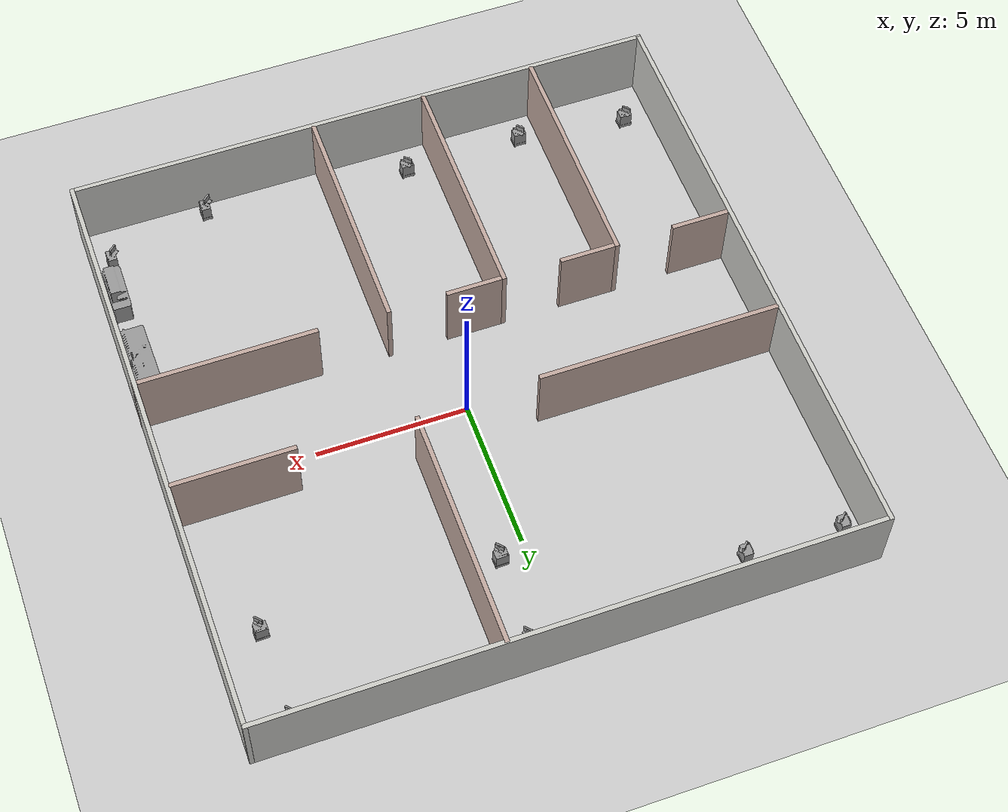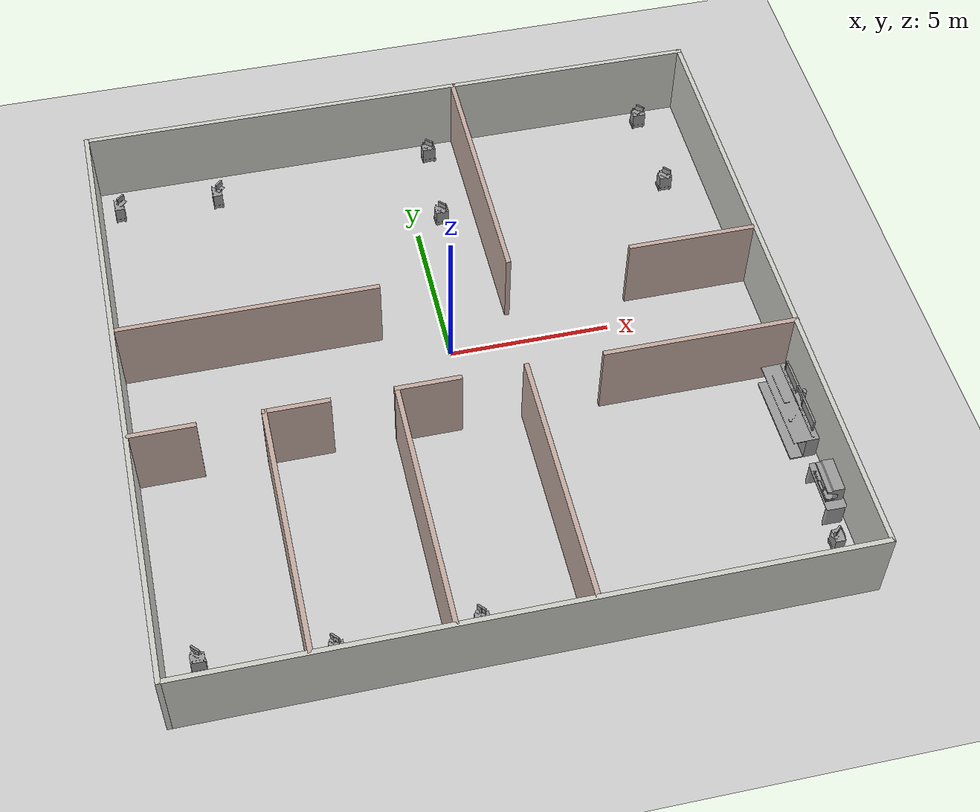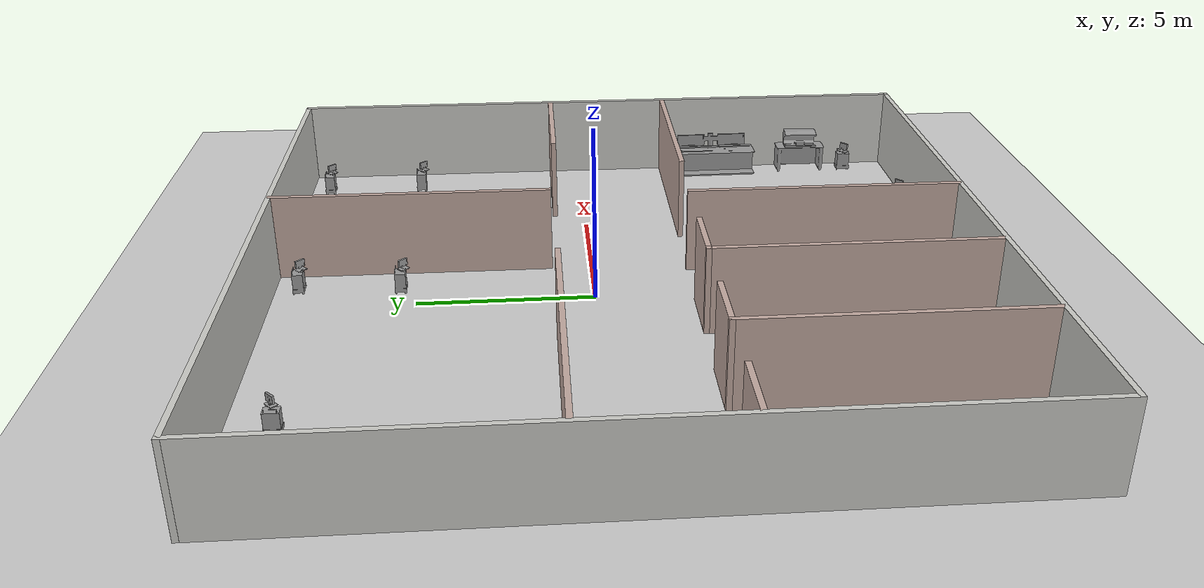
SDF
<sdf version="1.6">
 <world name="default">
  <light name="sun" type="directional">
   <pose>0 0 10 0 -0 0</pose>
   <diffuse>0.8 0.8 0.8 1</diffuse>
   <specular>0.2 0.2 0.2 1</specular>
   <attenuation>
    <range>1000</range>
    <constant>0.9</constant>
    <linear>0.01</linear>
    <quadratic>0.001</quadratic>
   </attenuation>
   <direction>-0.5 0.1 -0.9</direction>
  </light>
  <model name="ground_plane">
   <static>1</static>
   <link name="link">
    <collision name="collision">
     <geometry><plane><normal>0 0 1</normal><size>100 100</size></plane></geometry>
     <surface>
      <contact><collide_bitmask>65535</collide_bitmask></contact>
      <friction><ode><mu>100</mu><mu2>50</mu2></ode></friction>
     </surface>
    </collision>
    <visual name="visual">
     <cast_shadows>0</cast_shadows>
     <geometry><plane><normal>0 0 1</normal><size>100 100</size></plane></geometry>
     <material>
      <script><uri>file://media/materials/scripts/gazebo.material</uri><name>Gazebo/Grey</name></script>
     </material>
    </visual>
   </link>
  </model>
  <gravity>0 0 -9.8</gravity>
  <magnetic_field>6e-06 2.3e-05 -4.2e-05</magnetic_field>
  <atmosphere type="adiabatic"/>
  <physics name="default_physics" default="0" type="ode">
   <max_step_size>0.001</max_step_size>
   <real_time_factor>1</real_time_factor>
   <real_time_update_rate>1000</real_time_update_rate>
  </physics>
  <scene><ambient>0.4 0.4 0.4 1</ambient><background>0.7 0.7 0.7 1</background><shadows>1</shadows></scene>
  <spherical_coordinates>
   <surface_model>EARTH_WGS84</surface_model>
   <latitude_deg>0</latitude_deg>
   <longitude_deg>0</longitude_deg>
   <elevation>0</elevation>
   <heading_deg>0</heading_deg>
  </spherical_coordinates>
  <model name="hospital_building">
   <pose>-0.09369 -0.8053 0 0 -0 0</pose>
   <link name="Wall_2">
    <collision name="Wall_2_Collision">
     <geometry><box><size>20 0.15 2.5</size></box></geometry>
     <pose>0 0 1.25 0 -0 0</pose>
    </collision>
    <visual name="Wall_2_Visual">
     <pose>0 0 1.25 0 -0 0</pose>
     <geometry><box><size>20 0.15 2.5</size></box></geometry>
     <material>
      <script><uri>file://media/materials/scripts/gazebo.material</uri><name>Gazebo/CeilingTiled</name></script>
      <ambient>0.760784 0.662745 0.627451 1</ambient>
     </material>
     <meta><layer>0</layer></meta>
    </visual>
    <pose>-0.004813 -9.925 0 0 -0 3.14159</pose>
   </link>
   <link name="Wall_4">
    <collision name="Wall_4_Collision">
     <geometry><box><size>20 0.15 2.5</size></box></geometry>
     <pose>0 0 1.25 0 -0 0</pose>
    </collision>
    <visual name="Wall_4_Visual">
     <pose>0 0 1.25 0 -0 0</pose>
     <geometry><box><size>20 0.15 2.5</size></box></geometry>
     <material>
      <script><uri>file://media/materials/scripts/gazebo.material</uri><name>Gazebo/CeilingTiled</name></script>
      <ambient>0.760784 0.662745 0.627451 1</ambient>
     </material>
     <meta><layer>0</layer></meta>
    </visual>
    <pose>9.92019 0 0 0 -0 1.5708</pose>
   </link>
   <link name="Wall_40">
    <collision name="Wall_40_Collision">
     <geometry><box><size>8 0.15 2.5</size></box></geometry>
     <pose>0 0 1.25 0 -0 0</pose>
    </collision>
    <visual name="Wall_40_Visual">
     <pose>0 0 1.25 0 -0 0</pose>
     <geometry><box><size>8 0.15 2.5</size></box></geometry>
     <material>
      <script><uri>file://media/materials/scripts/gazebo.material</uri><name>Gazebo/Grey</name></script>
      <ambient>0.760784 0.662745 0.627451 1</ambient>
     </material>
     <meta><layer>0</layer></meta>
    </visual>
    <pose>-5.98337 -5.94165 0 0 0 -1.5708</pose>
   </link>
   <link name="Wall_44">
    <collision name="Wall_44_Collision">
     <geometry><box><size>8 0.15 2.5</size></box></geometry>
     <pose>0 0 1.25 0 -0 0</pose>
    </collision>
    <visual name="Wall_44_Visual">
     <pose>0 0 1.25 0 -0 0</pose>
     <geometry><box><size>8 0.15 2.5</size></box></geometry>
     <material>
      <script><uri>file://media/materials/scripts/gazebo.material</uri><name>Gazebo/Grey</name></script>
      <ambient>0.760784 0.662745 0.627451 1</ambient>
     </material>
     <meta><layer>0</layer></meta>
    </visual>
    <pose>-2.13337 -5.94165 0 0 0 -1.5708</pose>
   </link>
   <link name="Wall_47">
    <collision name="Wall_47_Collision">
     <geometry><box><size>8 0.15 2.5</size></box></geometry>
     <pose>0 0 1.25 0 -0 0</pose>
    </collision>
    <visual name="Wall_47_Visual">
     <pose>0 0 1.25 0 -0 0</pose>
     <geometry><box><size>8 0.15 2.5</size></box></geometry>
     <material>
      <script><uri>file://media/materials/scripts/gazebo.material</uri><name>Gazebo/Grey</name></script>
      <ambient>0.760784 0.662745 0.627451 1</ambient>
     </material>
     <meta><layer>0</layer></meta>
    </visual>
    <pose>1.71663 -5.94165 0 0 0 -1.5708</pose>
   </link>
   <link name="Wall_49">
    <collision name="Wall_49_Collision">
     <geometry><box><size>6 0.15 2.5</size></box></geometry>
     <pose>0 0 1.25 0 -0 0</pose>
    </collision>
    <visual name="Wall_49_Visual">
     <pose>0 0 1.25 0 -0 0</pose>
     <geometry><box><size>6 0.15 2.5</size></box></geometry>
     <material>
      <script><uri>file://media/materials/scripts/gazebo.material</uri><name>Gazebo/Grey</name></script>
      <ambient>0.760784 0.662745 0.627451 1</ambient>
     </material>
     <meta><layer>0</layer></meta>
    </visual>
    <pose>7.00481 -2.05374 0 0 -0 3.14159</pose>
   </link>
   <link name="Wall_51">
    <collision name="Wall_51_Collision">
     <geometry><box><size>2 0.15 2.5</size></box></geometry>
     <pose>0 0 1.25 0 -0 0</pose>
    </collision>
    <visual name="Wall_51_Visual">
     <pose>0 0 1.25 0 -0 0</pose>
     <geometry><box><size>2 0.15 2.5</size></box></geometry>
     <material>
      <script><uri>file://media/materials/scripts/gazebo.material</uri><name>Gazebo/Grey</name></script>
      <ambient>0.760784 0.662745 0.627451 1</ambient>
     </material>
     <meta><layer>0</layer></meta>
    </visual>
    <pose>-8.92186 -2.05374 0 0 -0 0</pose>
   </link>
   <link name="Wall_53">
    <collision name="Wall_53_Collision">
     <geometry><box><size>2 0.15 2.5</size></box></geometry>
     <pose>0 0 1.25 0 -0 0</pose>
    </collision>
    <visual name="Wall_53_Visual">
     <pose>0 0 1.25 0 -0 0</pose>
     <geometry><box><size>2 0.15 2.5</size></box></geometry>
     <material>
      <script><uri>file://media/materials/scripts/gazebo.material</uri><name>Gazebo/Grey</name></script>
      <ambient>0.760784 0.662745 0.627451 1</ambient>
     </material>
     <meta><layer>0</layer></meta>
    </visual>
    <pose>-5.05837 -2.01666 0 0 -0 0</pose>
   </link>
   <link name="Wall_55">
    <collision name="Wall_55_Collision">
     <geometry><box><size>2 0.15 2.5</size></box></geometry>
     <pose>0 0 1.25 0 -0 0</pose>
    </collision>
    <visual name="Wall_55_Visual">
     <pose>0 0 1.25 0 -0 0</pose>
     <geometry><box><size>2 0.15 2.5</size></box></geometry>
     <material>
      <script><uri>file://media/materials/scripts/gazebo.material</uri><name>Gazebo/Grey</name></script>
      <ambient>0.760784 0.662745 0.627451 1</ambient>
     </material>
     <meta><layer>0</layer></meta>
    </visual>
    <pose>-1.20837 -2.01666 0 0 -0 0</pose>
   </link>
   <link name="Wall_61">
    <collision name="Wall_61_Collision">
     <geometry><box><size>8 0.15 2.5</size></box></geometry>
     <pose>0 0 1.25 0 -0 0</pose>
    </collision>
    <visual name="Wall_61_Visual">
     <pose>0 0 1.25 0 -0 0</pose>
     <geometry><box><size>8 0.15 2.5</size></box></geometry>
     <material>
      <script><uri>file://media/materials/scripts/gazebo.material</uri><name>Gazebo/Grey</name></script>
      <ambient>0.760784 0.662745 0.627451 1</ambient>
     </material>
     <meta><layer>0</layer></meta>
    </visual>
    <pose>-5.87559 1.87846 0 0 -0 0</pose>
   </link>
   <link name="Wall_63">
    <collision name="Wall_63_Collision">
     <geometry><box><size>8 0.15 2.5</size></box></geometry>
     <pose>0 0 1.25 0 -0 0</pose>
    </collision>
    <visual name="Wall_63_Visual">
     <pose>0 0 1.25 0 -0 0</pose>
     <geometry><box><size>8 0.15 2.5</size></box></geometry>
     <material>
      <script><uri>file://media/materials/scripts/gazebo.material</uri><name>Gazebo/Grey</name></script>
      <ambient>0.760784 0.662745 0.627451 1</ambient>
     </material>
     <meta><layer>0</layer></meta>
    </visual>
    <pose>2.12734 5.96169 0 0 -0 1.5708</pose>
   </link>
   <link name="Wall_65">
    <collision name="Wall_65_Collision">
     <geometry><box><size>4 0.15 2.5</size></box></geometry>
     <pose>0 0 1.25 0 -0 0</pose>
    </collision>
    <visual name="Wall_65_Visual">
     <pose>0 0 1.25 0 -0 0</pose>
     <geometry><box><size>4 0.15 2.5</size></box></geometry>
     <material>
      <script><uri>file://media/materials/scripts/gazebo.material</uri><name>Gazebo/Grey</name></script>
      <ambient>0.760784 0.662745 0.627451 1</ambient>
     </material>
     <meta><layer>0</layer></meta>
    </visual>
    <pose>7.87701 1.77912 0 0 -0 0</pose>
   </link>
   <link name="Wall_7">
    <collision name="Wall_7_Collision">
     <geometry><box><size>20 0.15 2.5</size></box></geometry>
     <pose>0 0 1.25 0 -0 0</pose>
    </collision>
    <visual name="Wall_7_Visual">
     <pose>0 0 1.25 0 -0 0</pose>
     <geometry><box><size>20 0.15 2.5</size></box></geometry>
     <material>
      <script><uri>file://media/materials/scripts/gazebo.material</uri><name>Gazebo/CeilingTiled</name></script>
      <ambient>0.760784 0.662745 0.627451 1</ambient>
     </material>
     <meta><layer>0</layer></meta>
    </visual>
    <pose>-0.004813 9.925 0 0 -0 3.14159</pose>
   </link>
   <link name="Wall_9">
    <collision name="Wall_9_Collision">
     <geometry><box><size>20 0.15 2.5</size></box></geometry>
     <pose>0 0 1.25 0 -0 0</pose>
    </collision>
    <visual name="Wall_9_Visual">
     <pose>0 0 1.25 0 -0 0</pose>
     <geometry><box><size>20 0.15 2.5</size></box></geometry>
     <material>
      <script><uri>file://media/materials/scripts/gazebo.material</uri><name>Gazebo/CeilingTiled</name></script>
      <ambient>0.760784 0.662745 0.627451 1</ambient>
     </material>
     <meta><layer>0</layer></meta>
    </visual>
    <pose>-9.92981 0 0 0 0 -1.5708</pose>
   </link>
   <static>1</static>
  </model>
  <model name="lab_station2.0">
   <link name="link_3">
    <pose>0.493925 0.091041 0 0 -0 -3.13626</pose>
    <inertial>
     <mass>20</mass>
     <inertia>
      <ixx>0.166667</ixx>
      <ixy>0</ixy>
      <ixz>0</ixz>
      <iyy>0.166667</iyy>
      <iyz>0</iyz>
      <izz>0.166667</izz>
     </inertia>
    </inertial>
    <visual name="visual">
     <geometry>
      <mesh><uri>model://meshes/lab_station2.0/model.dae</uri><scale>0.75 0.75 0.75</scale></mesh>
     </geometry>
     <material>
      <lighting>1</lighting>
      <script><uri>file://media/materials/scripts/gazebo.material</uri><name>Gazebo/Grey</name></script>
      <shader type="pixel"><normal_map>__default__</normal_map></shader>
      <ambient>0.3 0.3 0.3 1</ambient>
      <diffuse>0.7 0.7 0.7 1</diffuse>
      <specular>0.01 0.01 0.01 1</specular>
      <emissive>0 0 0 1</emissive>
     </material>
    </visual>
    <collision name="collision">
     <geometry>
      <mesh><uri>model://meshes/lab_station2.0/model.dae</uri><scale>0.75 0.75 0.75</scale></mesh>
     </geometry>
     <surface>
      <friction>
       <ode><mu>1</mu><mu2>1</mu2><fdir1>0 0 0</fdir1><slip1>0</slip1><slip2>0</slip2></ode>
       <torsional>
        <coefficient>1</coefficient>
        <patch_radius>0</patch_radius>
        <surface_radius>0</surface_radius>
        <use_patch_radius>1</use_patch_radius>
        <ode><slip>0</slip></ode>
       </torsional>
      </friction>
      <bounce><restitution_coefficient>0</restitution_coefficient><threshold>1e+06</threshold></bounce>
      <contact>
       <collide_without_contact>0</collide_without_contact>
       <collide_without_contact_bitmask>1</collide_without_contact_bitmask>
       <collide_bitmask>1</collide_bitmask>
       <ode>
        <soft_cfm>0</soft_cfm>
        <soft_erp>0.2</soft_erp>
        <kp>1e+13</kp>
        <kd>1</kd>
        <max_vel>0.01</max_vel>
        <min_depth>0</min_depth>
       </ode>
       <bullet>
        <split_impulse>1</split_impulse>
        <split_impulse_penetration_threshold>-0.01</split_impulse_penetration_threshold>
        <soft_cfm>0</soft_cfm>
        <soft_erp>0.2</soft_erp>
        <kp>1e+13</kp>
        <kd>1</kd>
       </bullet>
      </contact>
     </surface>
    </collision>
   </link>
   <static>1</static>
   <pose>5.37157 -10.0558 0 0 -0 0</pose>
  </model>
  <model name="lab_station2.0_0">
   <link name="link_3">
    <pose>0.493925 0.091041 0 0 -0 -3.13626</pose>
    <inertial>
     <mass>20</mass>
     <inertia>
      <ixx>0.166667</ixx>
      <ixy>0</ixy>
      <ixz>0</ixz>
      <iyy>0.166667</iyy>
      <iyz>0</iyz>
      <izz>0.166667</izz>
     </inertia>
    </inertial>
    <visual name="visual">
     <geometry>
      <mesh><uri>model://meshes/lab_station2.0/model.dae</uri><scale>0.75 0.75 0.75</scale></mesh>
     </geometry>
     <material>
      <lighting>1</lighting>
      <script><uri>file://media/materials/scripts/gazebo.material</uri><name>Gazebo/Grey</name></script>
      <shader type="pixel"><normal_map>__default__</normal_map></shader>
      <ambient>0.3 0.3 0.3 1</ambient>
      <diffuse>0.7 0.7 0.7 1</diffuse>
      <specular>0.01 0.01 0.01 1</specular>
      <emissive>0 0 0 1</emissive>
     </material>
    </visual>
    <collision name="collision">
     <geometry>
      <mesh><uri>model://meshes/lab_station2.0/model.dae</uri><scale>0.75 0.75 0.75</scale></mesh>
     </geometry>
     <surface>
      <friction>
       <ode><mu>1</mu><mu2>1</mu2><fdir1>0 0 0</fdir1><slip1>0</slip1><slip2>0</slip2></ode>
       <torsional>
        <coefficient>1</coefficient>
        <patch_radius>0</patch_radius>
        <surface_radius>0</surface_radius>
        <use_patch_radius>1</use_patch_radius>
        <ode><slip>0</slip></ode>
       </torsional>
      </friction>
      <bounce><restitution_coefficient>0</restitution_coefficient><threshold>1e+06</threshold></bounce>
      <contact>
       <collide_without_contact>0</collide_without_contact>
       <collide_without_contact_bitmask>1</collide_without_contact_bitmask>
       <collide_bitmask>1</collide_bitmask>
       <ode>
        <soft_cfm>0</soft_cfm>
        <soft_erp>0.2</soft_erp>
        <kp>1e+13</kp>
        <kd>1</kd>
        <max_vel>0.01</max_vel>
        <min_depth>0</min_depth>
       </ode>
       <bullet>
        <split_impulse>1</split_impulse>
        <split_impulse_penetration_threshold>-0.01</split_impulse_penetration_threshold>
        <soft_cfm>0</soft_cfm>
        <soft_erp>0.2</soft_erp>
        <kp>1e+13</kp>
        <kd>1</kd>
       </bullet>
      </contact>
     </surface>
    </collision>
   </link>
   <static>1</static>
   <pose>8.84793 -9.07325 0 0 -0 0</pose>
  </model>
  <model name="lab_station2.0_0_clone">
   <link name="link_3">
    <pose>0.493925 0.091041 0 0 -0 -3.13626</pose>
    <inertial>
     <mass>20</mass>
     <inertia>
      <ixx>0.166667</ixx>
      <ixy>0</ixy>
      <ixz>0</ixz>
      <iyy>0.166667</iyy>
      <iyz>0</iyz>
      <izz>0.166667</izz>
     </inertia>
    </inertial>
    <visual name="visual">
     <geometry>
      <mesh><uri>model://meshes/lab_station2.0/model.dae</uri><scale>0.75 0.75 0.75</scale></mesh>
     </geometry>
     <material>
      <lighting>1</lighting>
      <script><uri>file://media/materials/scripts/gazebo.material</uri><name>Gazebo/Grey</name></script>
      <shader type="pixel"><normal_map>__default__</normal_map></shader>
      <ambient>0.3 0.3 0.3 1</ambient>
      <diffuse>0.7 0.7 0.7 1</diffuse>
      <specular>0.01 0.01 0.01 1</specular>
      <emissive>0 0 0 1</emissive>
     </material>
    </visual>
    <collision name="collision">
     <geometry>
      <mesh><uri>model://meshes/lab_station2.0/model.dae</uri><scale>0.75 0.75 0.75</scale></mesh>
     </geometry>
     <surface>
      <friction>
       <ode><mu>1</mu><mu2>1</mu2><fdir1>0 0 0</fdir1><slip1>0</slip1><slip2>0</slip2></ode>
       <torsional>
        <coefficient>1</coefficient>
        <patch_radius>0</patch_radius>
        <surface_radius>0</surface_radius>
        <use_patch_radius>1</use_patch_radius>
        <ode><slip>0</slip></ode>
       </torsional>
      </friction>
      <bounce><restitution_coefficient>0</restitution_coefficient><threshold>1e+06</threshold></bounce>
      <contact>
       <collide_without_contact>0</collide_without_contact>
       <collide_without_contact_bitmask>1</collide_without_contact_bitmask>
       <collide_bitmask>1</collide_bitmask>
       <ode>
        <soft_cfm>0</soft_cfm>
        <soft_erp>0.2</soft_erp>
        <kp>1e+13</kp>
        <kd>1</kd>
        <max_vel>0.01</max_vel>
        <min_depth>0</min_depth>
       </ode>
       <bullet>
        <split_impulse>1</split_impulse>
        <split_impulse_penetration_threshold>-0.01</split_impulse_penetration_threshold>
        <soft_cfm>0</soft_cfm>
        <soft_erp>0.2</soft_erp>
        <kp>1e+13</kp>
        <kd>1</kd>
       </bullet>
      </contact>
     </surface>
    </collision>
   </link>
   <static>1</static>
   <pose>-1.11127 -9.26631 0 0 0 -1.56129</pose>
  </model>
  <model name="lab_station2.0_0_clone_clone">
   <link name="link_3">
    <pose>0.493925 0.091041 0 0 -0 -3.13626</pose>
    <inertial>
     <mass>20</mass>
     <inertia>
      <ixx>0.166667</ixx>
      <ixy>0</ixy>
      <ixz>0</ixz>
      <iyy>0.166667</iyy>
      <iyz>0</iyz>
      <izz>0.166667</izz>
     </inertia>
    </inertial>
    <visual name="visual">
     <geometry>
      <mesh><uri>model://meshes/lab_station2.0/model.dae</uri><scale>0.75 0.75 0.75</scale></mesh>
     </geometry>
     <material>
      <lighting>1</lighting>
      <script><uri>file://media/materials/scripts/gazebo.material</uri><name>Gazebo/Grey</name></script>
      <shader type="pixel"><normal_map>__default__</normal_map></shader>
      <ambient>0.3 0.3 0.3 1</ambient>
      <diffuse>0.7 0.7 0.7 1</diffuse>
      <specular>0.01 0.01 0.01 1</specular>
      <emissive>0 0 0 1</emissive>
     </material>
    </visual>
    <collision name="collision">
     <geometry>
      <mesh><uri>model://meshes/lab_station2.0/model.dae</uri><scale>0.75 0.75 0.75</scale></mesh>
     </geometry>
     <surface>
      <friction>
       <ode><mu>1</mu><mu2>1</mu2><fdir1>0 0 0</fdir1><slip1>0</slip1><slip2>0</slip2></ode>
       <torsional>
        <coefficient>1</coefficient>
        <patch_radius>0</patch_radius>
        <surface_radius>0</surface_radius>
        <use_patch_radius>1</use_patch_radius>
        <ode><slip>0</slip></ode>
       </torsional>
      </friction>
      <bounce><restitution_coefficient>0</restitution_coefficient><threshold>1e+06</threshold></bounce>
      <contact>
       <collide_without_contact>0</collide_without_contact>
       <collide_without_contact_bitmask>1</collide_without_contact_bitmask>
       <collide_bitmask>1</collide_bitmask>
       <ode>
        <soft_cfm>0</soft_cfm>
        <soft_erp>0.2</soft_erp>
        <kp>1e+13</kp>
        <kd>1</kd>
        <max_vel>0.01</max_vel>
        <min_depth>0</min_depth>
       </ode>
       <bullet>
        <split_impulse>1</split_impulse>
        <split_impulse_penetration_threshold>-0.01</split_impulse_penetration_threshold>
        <soft_cfm>0</soft_cfm>
        <soft_erp>0.2</soft_erp>
        <kp>1e+13</kp>
        <kd>1</kd>
       </bullet>
      </contact>
     </surface>
    </collision>
   </link>
   <static>1</static>
   <pose>-5.16963 -9.28729 0 0 0 -1.56129</pose>
  </model>
  <model name="lab_station2.0_0_clone_clone_0">
   <link name="link_3">
    <pose>0.493925 0.091041 0 0 -0 -3.13626</pose>
    <inertial>
     <mass>20</mass>
     <inertia>
      <ixx>0.166667</ixx>
      <ixy>0</ixy>
      <ixz>0</ixz>
      <iyy>0.166667</iyy>
      <iyz>0</iyz>
      <izz>0.166667</izz>
     </inertia>
    </inertial>
    <visual name="visual">
     <geometry>
      <mesh><uri>model://meshes/lab_station2.0/model.dae</uri><scale>0.75 0.75 0.75</scale></mesh>
     </geometry>
     <material>
      <lighting>1</lighting>
      <script><uri>file://media/materials/scripts/gazebo.material</uri><name>Gazebo/Grey</name></script>
      <shader type="pixel"><normal_map>__default__</normal_map></shader>
      <ambient>0.3 0.3 0.3 1</ambient>
      <diffuse>0.7 0.7 0.7 1</diffuse>
      <specular>0.01 0.01 0.01 1</specular>
      <emissive>0 0 0 1</emissive>
     </material>
    </visual>
    <collision name="collision">
     <geometry>
      <mesh><uri>model://meshes/lab_station2.0/model.dae</uri><scale>0.75 0.75 0.75</scale></mesh>
     </geometry>
     <surface>
      <friction>
       <ode><mu>1</mu><mu2>1</mu2><fdir1>0 0 0</fdir1><slip1>0</slip1><slip2>0</slip2></ode>
       <torsional>
        <coefficient>1</coefficient>
        <patch_radius>0</patch_radius>
        <surface_radius>0</surface_radius>
        <use_patch_radius>1</use_patch_radius>
        <ode><slip>0</slip></ode>
       </torsional>
      </friction>
      <bounce><restitution_coefficient>0</restitution_coefficient><threshold>1e+06</threshold></bounce>
      <contact>
       <collide_without_contact>0</collide_without_contact>
       <collide_without_contact_bitmask>1</collide_without_contact_bitmask>
       <collide_bitmask>1</collide_bitmask>
       <ode>
        <soft_cfm>0</soft_cfm>
        <soft_erp>0.2</soft_erp>
        <kp>1e+13</kp>
        <kd>1</kd>
        <max_vel>0.01</max_vel>
        <min_depth>0</min_depth>
       </ode>
       <bullet>
        <split_impulse>1</split_impulse>
        <split_impulse_penetration_threshold>-0.01</split_impulse_penetration_threshold>
        <soft_cfm>0</soft_cfm>
        <soft_erp>0.2</soft_erp>
        <kp>1e+13</kp>
        <kd>1</kd>
       </bullet>
      </contact>
     </surface>
    </collision>
   </link>
   <static>1</static>
   <pose>-8.89403 -8.85292 0 0 0 -1.56129</pose>
  </model>
  <model name="lab_station4.0">
   <link name="link_0">
    <pose>0 0 0 0 0 -1.59928</pose>
    <inertial>
     <mass>20</mass>
     <inertia>
      <ixx>0.166667</ixx>
      <ixy>0</ixy>
      <ixz>0</ixz>
      <iyy>0.166667</iyy>
      <iyz>0</iyz>
      <izz>0.166667</izz>
     </inertia>
    </inertial>
    <visual name="visual">
     <geometry><mesh><uri>model://meshes/lab_station4.0/model.dae</uri><scale>1.75 1 1</scale></mesh></geometry>
     <material>
      <lighting>1</lighting>
      <script><uri>file://media/materials/scripts/gazebo.material</uri><name>Gazebo/Grey</name></script>
      <shader type="pixel"><normal_map>__default__</normal_map></shader>
      <ambient>0.3 0.3 0.3 1</ambient>
      <diffuse>0.7 0.7 0.7 1</diffuse>
      <specular>0.01 0.01 0.01 1</specular>
      <emissive>0 0 0 1</emissive>
     </material>
    </visual>
    <collision name="collision">
     <geometry><mesh><uri>model://meshes/lab_station4.0/model.dae</uri><scale>1.75 1 1</scale></mesh></geometry>
     <surface>
      <friction>
       <ode><mu>1</mu><mu2>1</mu2><fdir1>0 0 0</fdir1><slip1>0</slip1><slip2>0</slip2></ode>
       <torsional>
        <coefficient>1</coefficient>
        <patch_radius>0</patch_radius>
        <surface_radius>0</surface_radius>
        <use_patch_radius>1</use_patch_radius>
        <ode><slip>0</slip></ode>
       </torsional>
      </friction>
      <bounce><restitution_coefficient>0</restitution_coefficient><threshold>1e+06</threshold></bounce>
      <contact>
       <collide_without_contact>0</collide_without_contact>
       <collide_without_contact_bitmask>1</collide_without_contact_bitmask>
       <collide_bitmask>1</collide_bitmask>
       <ode>
        <soft_cfm>0</soft_cfm>
        <soft_erp>0.2</soft_erp>
        <kp>1e+13</kp>
        <kd>1</kd>
        <max_vel>0.01</max_vel>
        <min_depth>0</min_depth>
       </ode>
       <bullet>
        <split_impulse>1</split_impulse>
        <split_impulse_penetration_threshold>-0.01</split_impulse_penetration_threshold>
        <soft_cfm>0</soft_cfm>
        <soft_erp>0.2</soft_erp>
        <kp>1e+13</kp>
        <kd>1</kd>
       </bullet>
      </contact>
     </surface>
    </collision>
   </link>
   <static>1</static>
   <pose>9.06025 -6.85081 0 0 -0 0.013631</pose>
  </model>
  <model name="lab_station5.0">
   <link name="link_1">
    <pose>-0 0 0 0 -0 1.58529</pose>
    <inertial>
     <mass>10</mass>
     <inertia>
      <ixx>0.166667</ixx>
      <ixy>0</ixy>
      <ixz>0</ixz>
      <iyy>0.166667</iyy>
      <iyz>0</iyz>
      <izz>0.166667</izz>
     </inertia>
    </inertial>
    <visual name="visual">
     <geometry><mesh><uri>model://meshes/lab_station5.0/model.dae</uri><scale>1.75 1 1</scale></mesh></geometry>
     <material>
      <lighting>1</lighting>
      <script><uri>file://media/materials/scripts/gazebo.material</uri><name>Gazebo/Grey</name></script>
      <shader type="pixel"><normal_map>__default__</normal_map></shader>
      <ambient>0.3 0.3 0.3 1</ambient>
      <diffuse>0.7 0.7 0.7 1</diffuse>
      <specular>0.01 0.01 0.01 1</specular>
      <emissive>0 0 0 1</emissive>
     </material>
    </visual>
    <collision name="collision">
     <geometry><mesh><uri>model://meshes/lab_station5.0/model.dae</uri><scale>1.75 1 1</scale></mesh></geometry>
     <surface>
      <friction>
       <ode><mu>1</mu><mu2>1</mu2><fdir1>0 0 0</fdir1><slip1>0</slip1><slip2>0</slip2></ode>
       <torsional>
        <coefficient>1</coefficient>
        <patch_radius>0</patch_radius>
        <surface_radius>0</surface_radius>
        <use_patch_radius>1</use_patch_radius>
        <ode><slip>0</slip></ode>
       </torsional>
      </friction>
      <bounce><restitution_coefficient>0</restitution_coefficient><threshold>1e+06</threshold></bounce>
      <contact>
       <collide_without_contact>0</collide_without_contact>
       <collide_without_contact_bitmask>1</collide_without_contact_bitmask>
       <collide_bitmask>1</collide_bitmask>
       <ode>
        <soft_cfm>0</soft_cfm>
        <soft_erp>0.2</soft_erp>
        <kp>1e+13</kp>
        <kd>1</kd>
        <max_vel>0.01</max_vel>
        <min_depth>0</min_depth>
       </ode>
       <bullet>
        <split_impulse>1</split_impulse>
        <split_impulse_penetration_threshold>-0.01</split_impulse_penetration_threshold>
        <soft_cfm>0</soft_cfm>
        <soft_erp>0.2</soft_erp>
        <kp>1e+13</kp>
        <kd>1</kd>
       </bullet>
      </contact>
     </surface>
    </collision>
   </link>
   <static>1</static>
   <pose>9.7536 -6.03025 0 0 -0 0</pose>
  </model>
  <model name="lab_station2.0_0_clone_clone_clone">
   <link name="link_3">
    <pose>0.493925 0.091041 0 0 -0 -3.13626</pose>
    <inertial>
     <mass>20</mass>
     <inertia>
      <ixx>0.166667</ixx>
      <ixy>0</ixy>
      <ixz>0</ixz>
      <iyy>0.166667</iyy>
      <iyz>0</iyz>
      <izz>0.166667</izz>
     </inertia>
    </inertial>
    <visual name="visual">
     <geometry>
      <mesh><uri>model://meshes/lab_station2.0/model.dae</uri><scale>0.75 0.75 0.75</scale></mesh>
     </geometry>
     <material>
      <lighting>1</lighting>
      <script><uri>file://media/materials/scripts/gazebo.material</uri><name>Gazebo/Grey</name></script>
      <shader type="pixel"><normal_map>__default__</normal_map></shader>
      <ambient>0.3 0.3 0.3 1</ambient>
      <diffuse>0.7 0.7 0.7 1</diffuse>
      <specular>0.01 0.01 0.01 1</specular>
      <emissive>0 0 0 1</emissive>
     </material>
    </visual>
    <collision name="collision">
     <geometry>
      <mesh><uri>model://meshes/lab_station2.0/model.dae</uri><scale>0.75 0.75 0.75</scale></mesh>
     </geometry>
     <surface>
      <friction>
       <ode><mu>1</mu><mu2>1</mu2><fdir1>0 0 0</fdir1><slip1>0</slip1><slip2>0</slip2></ode>
       <torsional>
        <coefficient>1</coefficient>
        <patch_radius>0</patch_radius>
        <surface_radius>0</surface_radius>
        <use_patch_radius>1</use_patch_radius>
        <ode><slip>0</slip></ode>
       </torsional>
      </friction>
      <bounce><restitution_coefficient>0</restitution_coefficient><threshold>1e+06</threshold></bounce>
      <contact>
       <collide_without_contact>0</collide_without_contact>
       <collide_without_contact_bitmask>1</collide_without_contact_bitmask>
       <collide_bitmask>1</collide_bitmask>
       <ode>
        <soft_cfm>0</soft_cfm>
        <soft_erp>0.2</soft_erp>
        <kp>1e+13</kp>
        <kd>1</kd>
        <max_vel>0.01</max_vel>
        <min_depth>0</min_depth>
       </ode>
       <bullet>
        <split_impulse>1</split_impulse>
        <split_impulse_penetration_threshold>-0.01</split_impulse_penetration_threshold>
        <soft_cfm>0</soft_cfm>
        <soft_erp>0.2</soft_erp>
        <kp>1e+13</kp>
        <kd>1</kd>
       </bullet>
      </contact>
     </surface>
    </collision>
   </link>
   <static>1</static>
   <pose>-9.04475 7.77492 0 0 0 -3.13261</pose>
  </model>
  <model name="lab_station2.0_0_clone_clone_clone_clone">
   <link name="link_3">
    <pose>0.493925 0.091041 0 0 -0 -3.13626</pose>
    <inertial>
     <mass>20</mass>
     <inertia>
      <ixx>0.166667</ixx>
      <ixy>0</ixy>
      <ixz>0</ixz>
      <iyy>0.166667</iyy>
      <iyz>0</iyz>
      <izz>0.166667</izz>
     </inertia>
    </inertial>
    <visual name="visual">
     <geometry>
      <mesh><uri>model://meshes/lab_station2.0/model.dae</uri><scale>0.75 0.75 0.75</scale></mesh>
     </geometry>
     <material>
      <lighting>1</lighting>
      <script><uri>file://media/materials/scripts/gazebo.material</uri><name>Gazebo/Grey</name></script>
      <shader type="pixel"><normal_map>__default__</normal_map></shader>
      <ambient>0.3 0.3 0.3 1</ambient>
      <diffuse>0.7 0.7 0.7 1</diffuse>
      <specular>0.01 0.01 0.01 1</specular>
      <emissive>0 0 0 1</emissive>
     </material>
    </visual>
    <collision name="collision">
     <geometry>
      <mesh><uri>model://meshes/lab_station2.0/model.dae</uri><scale>0.75 0.75 0.75</scale></mesh>
     </geometry>
     <surface>
      <friction>
       <ode><mu>1</mu><mu2>1</mu2><fdir1>0 0 0</fdir1><slip1>0</slip1><slip2>0</slip2></ode>
       <torsional>
        <coefficient>1</coefficient>
        <patch_radius>0</patch_radius>
        <surface_radius>0</surface_radius>
        <use_patch_radius>1</use_patch_radius>
        <ode><slip>0</slip></ode>
       </torsional>
      </friction>
      <bounce><restitution_coefficient>0</restitution_coefficient><threshold>1e+06</threshold></bounce>
      <contact>
       <collide_without_contact>0</collide_without_contact>
       <collide_without_contact_bitmask>1</collide_without_contact_bitmask>
       <collide_bitmask>1</collide_bitmask>
       <ode>
        <soft_cfm>0</soft_cfm>
        <soft_erp>0.2</soft_erp>
        <kp>1e+13</kp>
        <kd>1</kd>
        <max_vel>0.01</max_vel>
        <min_depth>0</min_depth>
       </ode>
       <bullet>
        <split_impulse>1</split_impulse>
        <split_impulse_penetration_threshold>-0.01</split_impulse_penetration_threshold>
        <soft_cfm>0</soft_cfm>
        <soft_erp>0.2</soft_erp>
        <kp>1e+13</kp>
        <kd>1</kd>
       </bullet>
      </contact>
     </surface>
    </collision>
   </link>
   <static>1</static>
   <pose>-5.83873 7.70666 0 0 0 -3.13261</pose>
  </model>
  <model name="lab_station2.0_0_clone_clone_clone_clone_0">
   <link name="link_3">
    <pose>0.493925 0.091041 0 0 -0 -3.13626</pose>
    <inertial>
     <mass>20</mass>
     <inertia>
      <ixx>0.166667</ixx>
      <ixy>0</ixy>
      <ixz>0</ixz>
      <iyy>0.166667</iyy>
      <iyz>0</iyz>
      <izz>0.166667</izz>
     </inertia>
    </inertial>
    <visual name="visual">
     <geometry>
      <mesh><uri>model://meshes/lab_station2.0/model.dae</uri><scale>0.75 0.75 0.75</scale></mesh>
     </geometry>
     <material>
      <lighting>1</lighting>
      <script><uri>file://media/materials/scripts/gazebo.material</uri><name>Gazebo/Grey</name></script>
      <shader type="pixel"><normal_map>__default__</normal_map></shader>
      <ambient>0.3 0.3 0.3 1</ambient>
      <diffuse>0.7 0.7 0.7 1</diffuse>
      <specular>0.01 0.01 0.01 1</specular>
      <emissive>0 0 0 1</emissive>
     </material>
    </visual>
    <collision name="collision">
     <geometry>
      <mesh><uri>model://meshes/lab_station2.0/model.dae</uri><scale>0.75 0.75 0.75</scale></mesh>
     </geometry>
     <surface>
      <friction>
       <ode><mu>1</mu><mu2>1</mu2><fdir1>0 0 0</fdir1><slip1>0</slip1><slip2>0</slip2></ode>
       <torsional>
        <coefficient>1</coefficient>
        <patch_radius>0</patch_radius>
        <surface_radius>0</surface_radius>
        <use_patch_radius>1</use_patch_radius>
        <ode><slip>0</slip></ode>
       </torsional>
      </friction>
      <bounce><restitution_coefficient>0</restitution_coefficient><threshold>1e+06</threshold></bounce>
      <contact>
       <collide_without_contact>0</collide_without_contact>
       <collide_without_contact_bitmask>1</collide_without_contact_bitmask>
       <collide_bitmask>1</collide_bitmask>
       <ode>
        <soft_cfm>0</soft_cfm>
        <soft_erp>0.2</soft_erp>
        <kp>1e+13</kp>
        <kd>1</kd>
        <max_vel>0.01</max_vel>
        <min_depth>0</min_depth>
       </ode>
       <bullet>
        <split_impulse>1</split_impulse>
        <split_impulse_penetration_threshold>-0.01</split_impulse_penetration_threshold>
        <soft_cfm>0</soft_cfm>
        <soft_erp>0.2</soft_erp>
        <kp>1e+13</kp>
        <kd>1</kd>
       </bullet>
      </contact>
     </surface>
    </collision>
   </link>
   <static>1</static>
   <pose>0.906587 8.02093 0 0 -0 1.58955</pose>
  </model>
  <model name="lab_station2.0_0_clone_clone_clone_clone_0_clone">
   <link name="link_3">
    <pose>0.493925 0.091041 0 0 -0 -3.13626</pose>
    <inertial>
     <mass>20</mass>
     <inertia>
      <ixx>0.166667</ixx>
      <ixy>0</ixy>
      <ixz>0</ixz>
      <iyy>0.166667</iyy>
      <iyz>0</iyz>
      <izz>0.166667</izz>
     </inertia>
    </inertial>
    <visual name="visual">
     <geometry>
      <mesh><uri>model://meshes/lab_station2.0/model.dae</uri><scale>0.75 0.75 0.75</scale></mesh>
     </geometry>
     <material>
      <lighting>1</lighting>
      <script><uri>file://media/materials/scripts/gazebo.material</uri><name>Gazebo/Grey</name></script>
      <shader type="pixel"><normal_map>__default__</normal_map></shader>
      <ambient>0.3 0.3 0.3 1</ambient>
      <diffuse>0.7 0.7 0.7 1</diffuse>
      <specular>0.01 0.01 0.01 1</specular>
      <emissive>0 0 0 1</emissive>
     </material>
    </visual>
    <collision name="collision">
     <geometry>
      <mesh><uri>model://meshes/lab_station2.0/model.dae</uri><scale>0.75 0.75 0.75</scale></mesh>
     </geometry>
     <surface>
      <friction>
       <ode><mu>1</mu><mu2>1</mu2><fdir1>0 0 0</fdir1><slip1>0</slip1><slip2>0</slip2></ode>
       <torsional>
        <coefficient>1</coefficient>
        <patch_radius>0</patch_radius>
        <surface_radius>0</surface_radius>
        <use_patch_radius>1</use_patch_radius>
        <ode><slip>0</slip></ode>
       </torsional>
      </friction>
      <bounce><restitution_coefficient>0</restitution_coefficient><threshold>1e+06</threshold></bounce>
      <contact>
       <collide_without_contact>0</collide_without_contact>
       <collide_without_contact_bitmask>1</collide_without_contact_bitmask>
       <collide_bitmask>1</collide_bitmask>
       <ode>
        <soft_cfm>0</soft_cfm>
        <soft_erp>0.2</soft_erp>
        <kp>1e+13</kp>
        <kd>1</kd>
        <max_vel>0.01</max_vel>
        <min_depth>0</min_depth>
       </ode>
       <bullet>
        <split_impulse>1</split_impulse>
        <split_impulse_penetration_threshold>-0.01</split_impulse_penetration_threshold>
        <soft_cfm>0</soft_cfm>
        <soft_erp>0.2</soft_erp>
        <kp>1e+13</kp>
        <kd>1</kd>
       </bullet>
      </contact>
     </surface>
    </collision>
   </link>
   <static>1</static>
   <pose>0.743474 5.14438 0 0 -0 1.58955</pose>
  </model>
  <model name="lab_station2.0_0_clone_clone_clone_clone_0_clone_0">
   <link name="link_3">
    <pose>0.493925 0.091041 0 0 -0 -3.13626</pose>
    <inertial>
     <mass>20</mass>
     <inertia>
      <ixx>0.166667</ixx>
      <ixy>0</ixy>
      <ixz>0</ixz>
      <iyy>0.166667</iyy>
      <iyz>0</iyz>
      <izz>0.166667</izz>
     </inertia>
    </inertial>
    <visual name="visual">
     <geometry>
      <mesh><uri>model://meshes/lab_station2.0/model.dae</uri><scale>0.75 0.75 0.75</scale></mesh>
     </geometry>
     <material>
      <lighting>1</lighting>
      <script><uri>file://media/materials/scripts/gazebo.material</uri><name>Gazebo/Grey</name></script>
      <shader type="pixel"><normal_map>__default__</normal_map></shader>
      <ambient>0.3 0.3 0.3 1</ambient>
      <diffuse>0.7 0.7 0.7 1</diffuse>
      <specular>0.01 0.01 0.01 1</specular>
      <emissive>0 0 0 1</emissive>
     </material>
    </visual>
    <collision name="collision">
     <geometry>
      <mesh><uri>model://meshes/lab_station2.0/model.dae</uri><scale>0.75 0.75 0.75</scale></mesh>
     </geometry>
     <surface>
      <friction>
       <ode><mu>1</mu><mu2>1</mu2><fdir1>0 0 0</fdir1><slip1>0</slip1><slip2>0</slip2></ode>
       <torsional>
        <coefficient>1</coefficient>
        <patch_radius>0</patch_radius>
        <surface_radius>0</surface_radius>
        <use_patch_radius>1</use_patch_radius>
        <ode><slip>0</slip></ode>
       </torsional>
      </friction>
      <bounce><restitution_coefficient>0</restitution_coefficient><threshold>1e+06</threshold></bounce>
      <contact>
       <collide_without_contact>0</collide_without_contact>
       <collide_without_contact_bitmask>1</collide_without_contact_bitmask>
       <collide_bitmask>1</collide_bitmask>
       <ode>
        <soft_cfm>0</soft_cfm>
        <soft_erp>0.2</soft_erp>
        <kp>1e+13</kp>
        <kd>1</kd>
        <max_vel>0.01</max_vel>
        <min_depth>0</min_depth>
       </ode>
       <bullet>
        <split_impulse>1</split_impulse>
        <split_impulse_penetration_threshold>-0.01</split_impulse_penetration_threshold>
        <soft_cfm>0</soft_cfm>
        <soft_erp>0.2</soft_erp>
        <kp>1e+13</kp>
        <kd>1</kd>
       </bullet>
      </contact>
     </surface>
    </collision>
   </link>
   <static>1</static>
   <pose>8.2448 8.09063 0 0 -0 1.58955</pose>
  </model>
  <model name="lab_station2.0_0_clone_clone_clone_clone_0_clone_1">
   <link name="link_3">
    <pose>0.493925 0.091041 0 0 -0 -3.13626</pose>
    <inertial>
     <mass>20</mass>
     <inertia>
      <ixx>0.166667</ixx>
      <ixy>0</ixy>
      <ixz>0</ixz>
      <iyy>0.166667</iyy>
      <iyz>0</iyz>
      <izz>0.166667</izz>
     </inertia>
    </inertial>
    <visual name="visual">
     <geometry>
      <mesh><uri>model://meshes/lab_station2.0/model.dae</uri><scale>0.75 0.75 0.75</scale></mesh>
     </geometry>
     <material>
      <lighting>1</lighting>
      <script><uri>file://media/materials/scripts/gazebo.material</uri><name>Gazebo/Grey</name></script>
      <shader type="pixel"><normal_map>__default__</normal_map></shader>
      <ambient>0.3 0.3 0.3 1</ambient>
      <diffuse>0.7 0.7 0.7 1</diffuse>
      <specular>0.01 0.01 0.01 1</specular>
      <emissive>0 0 0 1</emissive>
     </material>
    </visual>
    <collision name="collision">
     <geometry>
      <mesh><uri>model://meshes/lab_station2.0/model.dae</uri><scale>0.75 0.75 0.75</scale></mesh>
     </geometry>
     <surface>
      <friction>
       <ode><mu>1</mu><mu2>1</mu2><fdir1>0 0 0</fdir1><slip1>0</slip1><slip2>0</slip2></ode>
       <torsional>
        <coefficient>1</coefficient>
        <patch_radius>0</patch_radius>
        <surface_radius>0</surface_radius>
        <use_patch_radius>1</use_patch_radius>
        <ode><slip>0</slip></ode>
       </torsional>
      </friction>
      <bounce><restitution_coefficient>0</restitution_coefficient><threshold>1e+06</threshold></bounce>
      <contact>
       <collide_without_contact>0</collide_without_contact>
       <collide_without_contact_bitmask>1</collide_without_contact_bitmask>
       <collide_bitmask>1</collide_bitmask>
       <ode>
        <soft_cfm>0</soft_cfm>
        <soft_erp>0.2</soft_erp>
        <kp>1e+13</kp>
        <kd>1</kd>
        <max_vel>0.01</max_vel>
        <min_depth>0</min_depth>
       </ode>
       <bullet>
        <split_impulse>1</split_impulse>
        <split_impulse_penetration_threshold>-0.01</split_impulse_penetration_threshold>
        <soft_cfm>0</soft_cfm>
        <soft_erp>0.2</soft_erp>
        <kp>1e+13</kp>
        <kd>1</kd>
       </bullet>
      </contact>
     </surface>
    </collision>
   </link>
   <static>1</static>
   <pose>8.29084 5.06382 0 0 -0 1.58955</pose>
  </model>
 </world>
</sdf>
